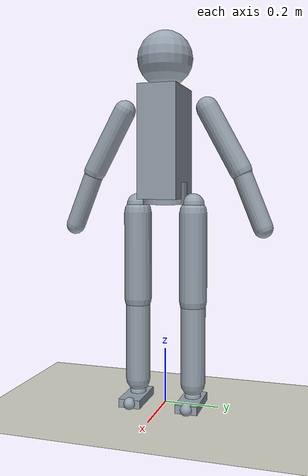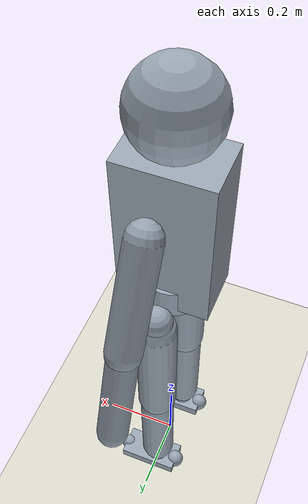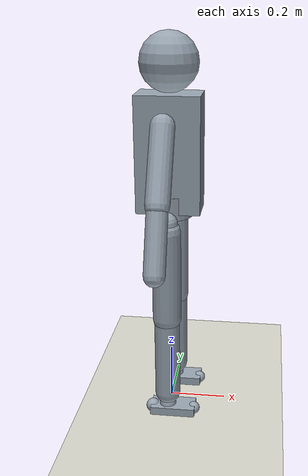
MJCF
<mujoco model="g1_scene_flat">
  <!--
    Scene: G1 humanoid on flat ground with lighting and camera.
    Includes g1_humanoid.xml which defines the robot model.
  -->

  <include file="g1_humanoid.xml"/>

  <statistic center="0 0 0.5" extent="2.0"/>

  <visual>
    <headlight diffuse="0.6 0.6 0.6" ambient="0.3 0.3 0.3" specular="0.2 0.2 0.2"/>
    <quality shadowsize="4096"/>
    <map znear="0.01" zfar="50"/>
  </visual>

  <worldbody>
    <!-- Ground plane -->
    <geom name="ground" type="plane" size="10 10 0.05"
          rgba="0.85 0.85 0.80 1" contype="1" conaffinity="1"
          condim="3" friction="0.8 0.005 0.0001"/>

    <!-- Lighting -->
    <light name="top_light" pos="0 0 3" dir="0 0 -1" diffuse="0.8 0.8 0.8"
           specular="0.3 0.3 0.3" directional="true"/>
    <light name="front_light" pos="2 -2 3" dir="-0.5 0.5 -0.7"
           diffuse="0.4 0.4 0.4" specular="0.1 0.1 0.1"/>

    <!-- Camera definitions -->
    <camera name="tracking" mode="trackcom" pos="2 -2 1.5"/>
    <camera name="side" pos="2 0 0.8" xyaxes="0 1 0 0 0 1" mode="fixed"/>
    <camera name="front" pos="0 -2.5 0.8" xyaxes="1 0 0 0 0 1" mode="fixed"/>
  </worldbody>
</mujoco>

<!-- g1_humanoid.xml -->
<mujoco model="g1_humanoid">

  <compiler angle="radian" autolimits="true"/>

  <option timestep="0.002" gravity="0 0 -9.81" integrator="implicitfast"/>

  <default>
    <joint limited="true" damping="5.0" armature="0.01" frictionloss="0.1"/>
    <geom contype="1" conaffinity="1" condim="3" friction="0.8 0.005 0.0001"
          rgba="0.6 0.65 0.7 1"/>
  </default>

  <asset>
    <material name="body_mat"  rgba="0.60 0.65 0.70 1"/>
    <material name="joint_mat" rgba="0.30 0.30 0.35 1"/>
    <material name="foot_mat"  rgba="0.15 0.15 0.15 1"/>
  </asset>

  <worldbody>
    <!-- ===================== TORSO ===================== -->
    <body name="torso" pos="0 0 0.95">
      <freejoint name="root"/>

      <!-- IMU site for sensors -->
      <site name="torso_imu_site" pos="0 0 0" size="0.01"/>

      <!-- Torso box -->
      <geom name="torso_geom" type="box" size="0.11 0.07 0.20"
            pos="0 0 0" material="body_mat" mass="12.0"
            contype="0" conaffinity="0"/>
      <!-- Head (cosmetic sphere) -->
      <geom name="head_geom" type="sphere" size="0.10"
            pos="0 0 0.30" material="body_mat" mass="2.5"
            contype="0" conaffinity="0"/>

      <!-- ==================== WAIST ==================== -->
      <body name="waist" pos="0 0 -0.18">
        <joint name="waist_yaw" type="hinge" axis="0 0 1"
               range="-0.50 0.50" damping="8.0"/>
        <geom name="waist_geom" type="cylinder" size="0.08 0.04"
              material="joint_mat" mass="2.0"/>

        <!-- ==================== LEFT LEG ==================== -->
        <body name="left_hip" pos="0 0.105 -0.04">
          <joint name="left_hip_yaw" type="hinge" axis="0 0 1"
                 range="-0.52 0.52" damping="5.0"/>
          <geom name="left_hip_yaw_geom" type="sphere" size="0.04"
                material="joint_mat" mass="0.8" contype="0" conaffinity="0"/>

          <body name="left_hip_roll_link" pos="0 0 0">
            <joint name="left_hip_roll" type="hinge" axis="1 0 0"
                   range="-0.52 0.52" damping="5.0"/>
            <geom name="left_hip_roll_geom" type="sphere" size="0.04"
                  material="joint_mat" mass="0.5" contype="0" conaffinity="0"/>

            <body name="left_thigh" pos="0 0 0">
              <joint name="left_hip_pitch" type="hinge" axis="0 1 0"
                     range="-1.57 0.52" damping="8.0"/>
              <geom name="left_thigh_geom" type="capsule" size="0.05"
                    fromto="0 0 -0.03  0 0 -0.35"
                    material="body_mat" mass="4.5"
                    contype="0" conaffinity="0"/>

              <body name="left_shin" pos="0 0 -0.35">
                <joint name="left_knee_pitch" type="hinge" axis="0 1 0"
                       range="-0.05 2.35" damping="8.0"/>
                <geom name="left_shin_geom" type="capsule" size="0.045"
                      fromto="0 0 0  0 0 -0.30"
                      material="body_mat" mass="3.5"
                      contype="0" conaffinity="0"/>

                <body name="left_ankle_link" pos="0 0 -0.35">
                  <joint name="left_ankle_pitch" type="hinge" axis="0 1 0"
                         range="-0.70 0.52" damping="5.0"/>
                  <geom name="left_ankle_link_geom" type="sphere" size="0.03"
                        material="joint_mat" mass="0.3" contype="0" conaffinity="0"/>

                  <body name="left_foot" pos="0 0 0">
                    <joint name="left_ankle_roll" type="hinge" axis="1 0 0"
                           range="-0.35 0.35" damping="3.0"/>
                    <!-- Foot pad -->
                    <geom name="left_foot_pad" type="box"
                          size="0.08 0.04 0.015" pos="0.02 0 -0.015"
                          material="foot_mat" mass="0.6"/>
                    <!-- Heel sphere -->
                    <geom name="left_foot_heel" type="sphere" size="0.025"
                          pos="-0.055 0 -0.015" material="foot_mat" mass="0.1"/>
                    <!-- Toe sphere -->
                    <geom name="left_foot_toe" type="sphere" size="0.022"
                          pos="0.095 0 -0.015" material="foot_mat" mass="0.1"/>
                    <!-- Foot force site -->
                    <site name="left_foot_site" pos="0.02 0 -0.03" size="0.01"/>
                  </body>
                </body>
              </body>
            </body>
          </body>
        </body>

        <!-- ==================== RIGHT LEG ==================== -->
        <body name="right_hip" pos="0 -0.105 -0.04">
          <joint name="right_hip_yaw" type="hinge" axis="0 0 1"
                 range="-0.52 0.52" damping="5.0"/>
          <geom name="right_hip_yaw_geom" type="sphere" size="0.04"
                material="joint_mat" mass="0.8" contype="0" conaffinity="0"/>

          <body name="right_hip_roll_link" pos="0 0 0">
            <joint name="right_hip_roll" type="hinge" axis="1 0 0"
                   range="-0.52 0.52" damping="5.0"/>
            <geom name="right_hip_roll_geom" type="sphere" size="0.04"
                  material="joint_mat" mass="0.5" contype="0" conaffinity="0"/>

            <body name="right_thigh" pos="0 0 0">
              <joint name="right_hip_pitch" type="hinge" axis="0 1 0"
                     range="-1.57 0.52" damping="8.0"/>
              <geom name="right_thigh_geom" type="capsule" size="0.05"
                    fromto="0 0 -0.03  0 0 -0.35"
                    material="body_mat" mass="4.5"
                    contype="0" conaffinity="0"/>

              <body name="right_shin" pos="0 0 -0.35">
                <joint name="right_knee_pitch" type="hinge" axis="0 1 0"
                       range="-0.05 2.35" damping="8.0"/>
                <geom name="right_shin_geom" type="capsule" size="0.045"
                      fromto="0 0 0  0 0 -0.30"
                      material="body_mat" mass="3.5"
                      contype="0" conaffinity="0"/>

                <body name="right_ankle_link" pos="0 0 -0.35">
                  <joint name="right_ankle_pitch" type="hinge" axis="0 1 0"
                         range="-0.70 0.52" damping="5.0"/>
                  <geom name="right_ankle_link_geom" type="sphere" size="0.03"
                        material="joint_mat" mass="0.3" contype="0" conaffinity="0"/>

                  <body name="right_foot" pos="0 0 0">
                    <joint name="right_ankle_roll" type="hinge" axis="1 0 0"
                           range="-0.35 0.35" damping="3.0"/>
                    <!-- Foot pad -->
                    <geom name="right_foot_pad" type="box"
                          size="0.08 0.04 0.015" pos="0.02 0 -0.015"
                          material="foot_mat" mass="0.6"/>
                    <!-- Heel sphere -->
                    <geom name="right_foot_heel" type="sphere" size="0.025"
                          pos="-0.055 0 -0.015" material="foot_mat" mass="0.1"/>
                    <!-- Toe sphere -->
                    <geom name="right_foot_toe" type="sphere" size="0.022"
                          pos="0.095 0 -0.015" material="foot_mat" mass="0.1"/>
                    <!-- Foot force site -->
                    <site name="right_foot_site" pos="0.02 0 -0.03" size="0.01"/>
                  </body>
                </body>
              </body>
            </body>
          </body>
        </body>

      </body><!-- /waist -->

      <!-- ==================== LEFT ARM (locked, no joints) ==================== -->
      <body name="left_upper_arm" pos="0 0.155 0.12">
        <geom name="left_upper_arm_geom" type="capsule" size="0.04"
              fromto="0 0 0  0 0.12 -0.22"
              material="body_mat" mass="2.5" contype="0" conaffinity="0"/>
        <body name="left_forearm" pos="0 0.12 -0.22">
          <geom name="left_forearm_geom" type="capsule" size="0.035"
                fromto="0 0 0  0 0.08 -0.20"
                material="body_mat" mass="1.5" contype="0" conaffinity="0"/>
        </body>
      </body>

      <!-- ==================== RIGHT ARM (locked, no joints) ==================== -->
      <body name="right_upper_arm" pos="0 -0.155 0.12">
        <geom name="right_upper_arm_geom" type="capsule" size="0.04"
              fromto="0 0 0  0 -0.12 -0.22"
              material="body_mat" mass="2.5" contype="0" conaffinity="0"/>
        <body name="right_forearm" pos="0 -0.12 -0.22">
          <geom name="right_forearm_geom" type="capsule" size="0.035"
                fromto="0 0 0  0 -0.08 -0.20"
                material="body_mat" mass="1.5" contype="0" conaffinity="0"/>
        </body>
      </body>

    </body><!-- /torso -->
  </worldbody>

  <!-- ===================== ACTUATORS ===================== -->
  <!--
    General position-servo actuators.
    tau = kp*(ctrl - qpos) - kd*qvel  implemented via:
      gainprm = kp
      biasprm = [0, -kp, -kd]
  -->
  <actuator>
    <!-- Waist -->
    <general name="waist_yaw_act"       joint="waist_yaw"
             gaintype="fixed" gainprm="600"
             biastype="affine" biasprm="0 -600 -30"
             ctrlrange="-0.50 0.50"/>

    <!-- Left Leg -->
    <general name="left_hip_yaw_act"    joint="left_hip_yaw"
             gaintype="fixed" gainprm="600"
             biastype="affine" biasprm="0 -600 -30"
             ctrlrange="-0.52 0.52"/>
    <general name="left_hip_roll_act"   joint="left_hip_roll"
             gaintype="fixed" gainprm="600"
             biastype="affine" biasprm="0 -600 -30"
             ctrlrange="-0.52 0.52"/>
    <general name="left_hip_pitch_act"  joint="left_hip_pitch"
             gaintype="fixed" gainprm="900"
             biastype="affine" biasprm="0 -900 -45"
             ctrlrange="-1.57 0.52"/>
    <general name="left_knee_pitch_act" joint="left_knee_pitch"
             gaintype="fixed" gainprm="900"
             biastype="affine" biasprm="0 -900 -45"
             ctrlrange="-0.05 2.35"/>
    <general name="left_ankle_pitch_act" joint="left_ankle_pitch"
             gaintype="fixed" gainprm="450"
             biastype="affine" biasprm="0 -450 -22"
             ctrlrange="-0.70 0.52"/>
    <general name="left_ankle_roll_act" joint="left_ankle_roll"
             gaintype="fixed" gainprm="240"
             biastype="affine" biasprm="0 -240 -12"
             ctrlrange="-0.35 0.35"/>

    <!-- Right Leg -->
    <general name="right_hip_yaw_act"    joint="right_hip_yaw"
             gaintype="fixed" gainprm="600"
             biastype="affine" biasprm="0 -600 -30"
             ctrlrange="-0.52 0.52"/>
    <general name="right_hip_roll_act"   joint="right_hip_roll"
             gaintype="fixed" gainprm="600"
             biastype="affine" biasprm="0 -600 -30"
             ctrlrange="-0.52 0.52"/>
    <general name="right_hip_pitch_act"  joint="right_hip_pitch"
             gaintype="fixed" gainprm="900"
             biastype="affine" biasprm="0 -900 -45"
             ctrlrange="-1.57 0.52"/>
    <general name="right_knee_pitch_act" joint="right_knee_pitch"
             gaintype="fixed" gainprm="900"
             biastype="affine" biasprm="0 -900 -45"
             ctrlrange="-0.05 2.35"/>
    <general name="right_ankle_pitch_act" joint="right_ankle_pitch"
             gaintype="fixed" gainprm="450"
             biastype="affine" biasprm="0 -450 -22"
             ctrlrange="-0.70 0.52"/>
    <general name="right_ankle_roll_act" joint="right_ankle_roll"
             gaintype="fixed" gainprm="240"
             biastype="affine" biasprm="0 -240 -12"
             ctrlrange="-0.35 0.35"/>
  </actuator>

  <!-- ===================== SENSORS ===================== -->
  <sensor>
    <accelerometer name="torso_accel" site="torso_imu_site"/>
    <gyro          name="torso_gyro"  site="torso_imu_site"/>
    <force         name="left_foot_force"  site="left_foot_site"/>
    <force         name="right_foot_force" site="right_foot_site"/>
  </sensor>

</mujoco>
